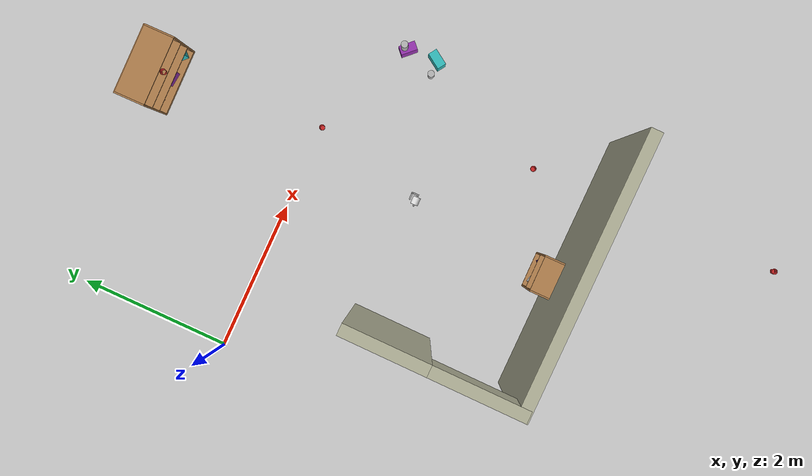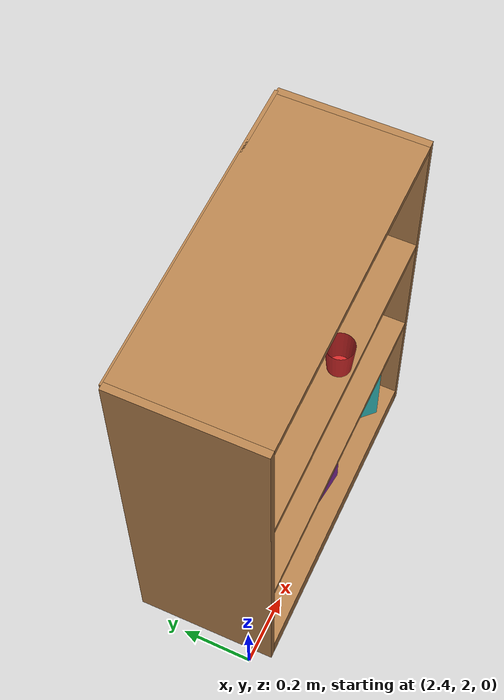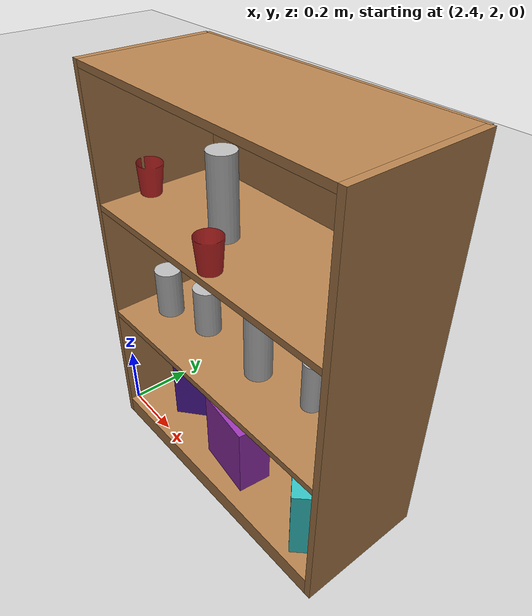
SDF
<sdf version="1.6">
 <world name="default">
  <model name="ground_plane">
   <static>1</static>
   <link name="link">
    <collision name="collision">
     <geometry><plane><normal>0 0 1</normal><size>20 20</size></plane></geometry>
     <surface>
      <contact><collide_bitmask>65535</collide_bitmask></contact>
      <friction><ode><mu>400</mu><mu2>50</mu2></ode></friction>
     </surface>
    </collision>
    <visual name="visual">
     <cast_shadows>0</cast_shadows>
     <geometry><plane><normal>0 0 1</normal><size>20 20</size></plane></geometry>
     <material>
      <script><uri>file://media/materials/scripts/gazebo.material</uri><name>Gazebo/Grey</name></script>
     </material>
    </visual>
   </link>
  </model>
  <model name="bookshelf">
   <static>1</static>
   <link name="link">
    <inertial><mass>1</mass></inertial>
    <collision name="back">
     <pose>0 0.005 0.6 0 -0 0</pose>
     <geometry><box><size>0.9 0.01 1.2</size></box></geometry>
    </collision>
    <visual name="visual1">
     <pose>0 0.005 0.6 0 -0 0</pose>
     <geometry><box><size>0.9 0.01 1.2</size></box></geometry>
     <material>
      <script><uri>file://media/materials/scripts/gazebo.material</uri><name>Gazebo/Wood</name></script>
     </material>
    </visual>
    <collision name="left_side">
     <pose>0.45 -0.195 0.6 0 -0 0</pose>
     <geometry><box><size>0.02 0.4 1.2</size></box></geometry>
    </collision>
    <visual name="visual2">
     <pose>0.45 -0.195 0.6 0 -0 0</pose>
     <geometry><box><size>0.02 0.4 1.2</size></box></geometry>
     <material>
      <script><uri>file://media/materials/scripts/gazebo.material</uri><name>Gazebo/Wood</name></script>
     </material>
    </visual>
    <collision name="right_side">
     <pose>-0.45 -0.195 0.6 0 -0 0</pose>
     <geometry><box><size>0.02 0.4 1.2</size></box></geometry>
    </collision>
    <visual name="visual3">
     <pose>-0.45 -0.195 0.6 0 -0 0</pose>
     <geometry><box><size>0.02 0.4 1.2</size></box></geometry>
     <material>
      <script><uri>file://media/materials/scripts/gazebo.material</uri><name>Gazebo/Wood</name></script>
     </material>
    </visual>
    <collision name="bottom">
     <pose>0 -0.195 0.03 0 -0 0</pose>
     <geometry><box><size>0.88 0.4 0.06</size></box></geometry>
    </collision>
    <visual name="visual4">
     <pose>0 -0.195 0.03 0 -0 0</pose>
     <geometry><box><size>0.88 0.4 0.06</size></box></geometry>
     <material>
      <script><uri>file://media/materials/scripts/gazebo.material</uri><name>Gazebo/Wood</name></script>
     </material>
    </visual>
    <collision name="top">
     <pose>0 -0.195 1.19 0 -0 0</pose>
     <geometry><box><size>0.88 0.4 0.02</size></box></geometry>
    </collision>
    <visual name="visual5">
     <pose>0 -0.195 1.19 0 -0 0</pose>
     <geometry><box><size>0.88 0.4 0.02</size></box></geometry>
     <material>
      <script><uri>file://media/materials/scripts/gazebo.material</uri><name>Gazebo/Wood</name></script>
     </material>
    </visual>
    <collision name="low_shelf">
     <pose>0 -0.195 0.43 0 -0 0</pose>
     <geometry><box><size>0.88 0.4 0.02</size></box></geometry>
    </collision>
    <visual name="visual6">
     <pose>0 -0.195 0.43 0 -0 0</pose>
     <geometry><box><size>0.88 0.4 0.02</size></box></geometry>
     <material>
      <script><uri>file://media/materials/scripts/gazebo.material</uri><name>Gazebo/Wood</name></script>
     </material>
    </visual>
    <collision name="high_shelf">
     <pose>0 -0.195 0.8 0 -0 0</pose>
     <geometry><box><size>0.88 0.4 0.02</size></box></geometry>
    </collision>
    <visual name="visual7">
     <pose>0 -0.195 0.8 0 -0 0</pose>
     <geometry><box><size>0.88 0.4 0.02</size></box></geometry>
     <material>
      <script><uri>file://media/materials/scripts/gazebo.material</uri><name>Gazebo/Wood</name></script>
     </material>
    </visual>
    <velocity_decay><linear>0</linear><angular>0</angular></velocity_decay>
   </link>
   <pose>2.88901 2.34907 0 0 -0 0.011886</pose>
  </model>
  <model name="unit_box_0">
   <pose>2.91022 2.06442 0.177873 0 -0 1.4611</pose>
   <link name="link">
    <inertial>
     <mass>1</mass>
     <inertia>
      <ixx>0.166667</ixx>
      <ixy>0</ixy>
      <ixz>0</ixz>
      <iyy>0.166667</iyy>
      <iyz>0</iyz>
      <izz>0.166667</izz>
     </inertia>
    </inertial>
    <collision name="collision"><geometry><box><size>0.103337 0.19266 0.235754</size></box></geometry></collision>
    <visual name="visual">
     <geometry><box><size>0.103337 0.19266 0.235754</size></box></geometry>
     <material>
      <script><name>Gazebo/Purple</name><uri>file://media/materials/scripts/gazebo.material</uri></script>
     </material>
    </visual>
   </link>
  </model>
  <model name="unit_box_0_clone">
   <pose>3.20796 2.08529 0.177871 0 -0 0.810944</pose>
   <link name="link">
    <inertial>
     <mass>1</mass>
     <inertia>
      <ixx>0.166667</ixx>
      <ixy>0</ixy>
      <ixz>0</ixz>
      <iyy>0.166667</iyy>
      <iyz>0</iyz>
      <izz>0.166667</izz>
     </inertia>
    </inertial>
    <collision name="collision"><geometry><box><size>0.103337 0.19266 0.235754</size></box></geometry></collision>
    <visual name="visual">
     <geometry><box><size>0.103337 0.19266 0.235754</size></box></geometry>
     <material>
      <script><name>Gazebo/Turquoise</name><uri>file://media/materials/scripts/gazebo.material</uri></script>
     </material>
    </visual>
   </link>
  </model>
  <model name="unit_box_0_clone_0">
   <pose>2.64663 2.13879 0.177874 -1e-06 1e-06 -0.868392</pose>
   <link name="link">
    <inertial>
     <mass>1</mass>
     <inertia>
      <ixx>0.166667</ixx>
      <ixy>0</ixy>
      <ixz>0</ixz>
      <iyy>0.166667</iyy>
      <iyz>0</iyz>
      <izz>0.166667</izz>
     </inertia>
    </inertial>
    <collision name="collision"><geometry><box><size>0.103337 0.19266 0.235754</size></box></geometry></collision>
    <visual name="visual">
     <geometry><box><size>0.103337 0.19266 0.235754</size></box></geometry>
     <material>
      <script><name>Gazebo/Indigo</name><uri>file://media/materials/scripts/gazebo.material</uri></script>
     </material>
    </visual>
   </link>
  </model>
  <model name="sprite">
   <static>0</static>
   <link name="link">
    <inertial>
     <mass>0.25</mass>
     <inertia><ixx>0</ixx><ixy>0</ixy><ixz>0</ixz><iyy>0</iyy><iyz>0</iyz><izz>0</izz></inertia>
    </inertial>
    <collision name="collision">
     <pose>0 0 0.075 -3.14159 -0 0</pose>
     <geometry><cylinder><radius>0.04</radius><length>0.15</length></cylinder></geometry>
    </collision>
    <visual name="visual">
     <pose>0 0 0.075 -3.14159 -0 0</pose>
     <geometry><cylinder><radius>0.04</radius><length>0.15</length></cylinder></geometry>
     <material>
      <script>
       <uri>model://sprite/material/scripts</uri>
       <uri>model://sprite/material/textures</uri>
       <name>Custom/sprite</name>
      </script>
     </material>
    </visual>
    <velocity_decay><linear>0</linear><angular>0</angular></velocity_decay>
   </link>
   <pose>2.55298 2.08461 0.440008 -0.000126 -0.000168 -5.5e-05</pose>
  </model>
  <model name="cocacola">
   <static>0</static>
   <link name="link">
    <inertial>
     <mass>0.25</mass>
     <inertia><ixx>0</ixx><ixy>0</ixy><ixz>0</ixz><iyy>0</iyy><iyz>0</iyz><izz>0</izz></inertia>
    </inertial>
    <collision name="collision">
     <pose>0 0 0.075 -3.14159 -0 0</pose>
     <geometry><cylinder><radius>0.04</radius><length>0.15</length></cylinder></geometry>
    </collision>
    <visual name="visual">
     <pose>0 0 0.075 -3.14159 -0 0</pose>
     <geometry><cylinder><radius>0.04</radius><length>0.15</length></cylinder></geometry>
     <material>
      <script>
       <uri>model://cocacola/material/scripts</uri>
       <uri>model://cocacola/material/textures</uri>
       <name>Custom/cocacola</name>
      </script>
     </material>
    </visual>
    <velocity_decay><linear>0</linear><angular>0</angular></velocity_decay>
   </link>
   <pose>2.70315 2.11913 0.44001 -0.000179 0.000163 -7e-05</pose>
  </model>
  <model name="coke_can_slim">
   <static>0</static>
   <link name="link">
    <inertial>
     <mass>0.15</mass>
     <inertia><ixx>2079.98</ixx><ixy>0</ixy><ixz>0</ixz><iyy>2079.98</iyy><iyz>0</iyz><izz>419.21</izz></inertia>
    </inertial>
    <collision name="collision">
     <geometry><cylinder><radius>0.029</radius><length>0.15</length></cylinder></geometry>
    </collision>
    <visual name="visual">
     <geometry><cylinder><radius>0.029</radius><length>0.15</length></cylinder></geometry>
     <material>
      <script>
       <uri>model://coke_can_slim/material/scripts</uri>
       <uri>model://coke_can_slim/material/textures</uri>
       <name>Custom/coke_can_slim</name>
      </script>
     </material>
    </visual>
    <velocity_decay><linear>0</linear><angular>0</angular></velocity_decay>
   </link>
   <pose>3.13415 2.14019 0.514999 -0.000298 3.5e-05 0</pose>
  </model>
  <model name="pringles2">
   <static>0</static>
   <link name="link">
    <inertial>
     <mass>0.25</mass>
     <inertia><ixx>0</ixx><ixy>0</ixy><ixz>0</ixz><iyy>0</iyy><iyz>0</iyz><izz>0</izz></inertia>
    </inertial>
    <collision name="collision">
     <pose>0 0 0.12 -3.14159 -0 0</pose>
     <geometry><cylinder><radius>0.04</radius><length>0.235</length></cylinder></geometry>
    </collision>
    <visual name="visual">
     <pose>0 0 0.12 -3.14159 -0 0</pose>
     <geometry><cylinder><radius>0.04</radius><length>0.235</length></cylinder></geometry>
     <material>
      <script>
       <uri>model://pringles2/material/scripts</uri>
       <uri>model://pringles2/material/textures</uri>
       <name>Custom/pringles2</name>
      </script>
     </material>
    </visual>
    <velocity_decay><linear>0</linear><angular>0</angular></velocity_decay>
   </link>
   <pose>2.949 2.11273 0.437493 8e-06 6.4e-05 0.001154</pose>
  </model>
  <model name="pringles">
   <static>0</static>
   <link name="link">
    <inertial>
     <mass>0.25</mass>
     <inertia><ixx>0</ixx><ixy>0</ixy><ixz>0</ixz><iyy>0</iyy><iyz>0</iyz><izz>0</izz></inertia>
    </inertial>
    <collision name="collision">
     <geometry><cylinder><radius>0.04</radius><length>0.235</length></cylinder></geometry>
    </collision>
    <visual name="visual">
     <geometry><cylinder><radius>0.04</radius><length>0.235</length></cylinder></geometry>
     <material>
      <script>
       <uri>model://pringles/material/scripts</uri>
       <uri>model://pringles/material/textures</uri>
       <name>Custom/pringles</name>
      </script>
     </material>
    </visual>
    <velocity_decay><linear>0</linear><angular>0</angular></velocity_decay>
   </link>
   <pose>2.81279 2.11198 0.927495 -6e-05 9.4e-05 -0.001067</pose>
  </model>
  <model name="cup_glass_test">
   <link name="link_0">
    <inertial>
     <mass>0.0510344</mass>
     <inertia>
      <ixx>5.22719e-05</ixx>
      <ixy>0</ixy>
      <ixz>0</ixz>
      <iyy>5.22719e-05</iyy>
      <iyz>0</iyz>
      <izz>3.65038e-05</izz>
     </inertia>
     <pose>0 0 0.048 0 -0 0</pose>
    </inertial>
    <visual name="visual">
     <geometry><mesh><uri>model://cup_glass_test/meshes/cup_glass.dae</uri><scale>1 1 1</scale></mesh></geometry>
     <material>
      <lighting>1</lighting>
      <script><uri>file://media/materials/scripts/gazebo.material</uri><name>Gazebo/Red</name></script>
     </material>
    </visual>
    <collision name="collision">
     <geometry><mesh><uri>model://cup_glass_test/meshes/cup_glass.dae</uri><scale>1 1 1</scale></mesh></geometry>
     <surface>
      <friction>
       <ode><mu>1</mu><mu2>1</mu2><fdir1>0 0 0</fdir1><slip1>0</slip1><slip2>0</slip2></ode>
       <torsional>
        <coefficient>1</coefficient>
        <patch_radius>0</patch_radius>
        <surface_radius>0</surface_radius>
        <use_patch_radius>1</use_patch_radius>
        <ode><slip>0</slip></ode>
       </torsional>
      </friction>
      <bounce><restitution_coefficient>0</restitution_coefficient><threshold>1e+06</threshold></bounce>
      <contact>
       <collide_without_contact>0</collide_without_contact>
       <collide_without_contact_bitmask>1</collide_without_contact_bitmask>
       <collide_bitmask>1</collide_bitmask>
       <ode>
        <soft_cfm>0</soft_cfm>
        <soft_erp>0.2</soft_erp>
        <kp>1e+13</kp>
        <kd>1</kd>
        <max_vel>0.01</max_vel>
        <min_depth>0</min_depth>
       </ode>
       <bullet>
        <split_impulse>1</split_impulse>
        <split_impulse_penetration_threshold>-0.01</split_impulse_penetration_threshold>
        <soft_cfm>0</soft_cfm>
        <soft_erp>0.2</soft_erp>
        <kp>1e+13</kp>
        <kd>1</kd>
       </bullet>
      </contact>
     </surface>
    </collision>
   </link>
   <static>0</static>
   <pose>2.91796 1.99162 0.809318 -0.014445 -0.014271 0.093986</pose>
  </model>
  <model name="cup_glass_test_0">
   <link name="link_0">
    <inertial>
     <mass>0.0510344</mass>
     <inertia>
      <ixx>5.22719e-05</ixx>
      <ixy>0</ixy>
      <ixz>0</ixz>
      <iyy>5.22719e-05</iyy>
      <iyz>0</iyz>
      <izz>3.65038e-05</izz>
     </inertia>
     <pose>0 0 0.048 0 -0 0</pose>
    </inertial>
    <visual name="visual">
     <geometry><mesh><uri>model://cup_glass_test/meshes/cup_glass.dae</uri><scale>1 1 1</scale></mesh></geometry>
     <material>
      <lighting>1</lighting>
      <script><uri>file://media/materials/scripts/gazebo.material</uri><name>Gazebo/Red</name></script>
     </material>
    </visual>
    <collision name="collision">
     <geometry><mesh><uri>model://cup_glass_test/meshes/cup_glass.dae</uri><scale>1 1 1</scale></mesh></geometry>
     <surface>
      <friction>
       <ode><mu>1</mu><mu2>1</mu2><fdir1>0 0 0</fdir1><slip1>0</slip1><slip2>0</slip2></ode>
       <torsional>
        <coefficient>1</coefficient>
        <patch_radius>0</patch_radius>
        <surface_radius>0</surface_radius>
        <use_patch_radius>1</use_patch_radius>
        <ode><slip>0</slip></ode>
       </torsional>
      </friction>
      <bounce><restitution_coefficient>0</restitution_coefficient><threshold>1e+06</threshold></bounce>
      <contact>
       <collide_without_contact>0</collide_without_contact>
       <collide_without_contact_bitmask>1</collide_without_contact_bitmask>
       <collide_bitmask>1</collide_bitmask>
       <ode>
        <soft_cfm>0</soft_cfm>
        <soft_erp>0.2</soft_erp>
        <kp>1e+13</kp>
        <kd>1</kd>
        <max_vel>0.01</max_vel>
        <min_depth>0</min_depth>
       </ode>
       <bullet>
        <split_impulse>1</split_impulse>
        <split_impulse_penetration_threshold>-0.01</split_impulse_penetration_threshold>
        <soft_cfm>0</soft_cfm>
        <soft_erp>0.2</soft_erp>
        <kp>1e+13</kp>
        <kd>1</kd>
       </bullet>
      </contact>
     </surface>
    </collision>
   </link>
   <static>0</static>
   <pose>2.48303 2.097 0.81171 -0.008596 0.065626 0.085069</pose>
  </model>
  <model name="cup_glass_test_1">
   <link name="link_0">
    <inertial>
     <mass>0.0510344</mass>
     <inertia>
      <ixx>5.22719e-05</ixx>
      <ixy>0</ixy>
      <ixz>0</ixz>
      <iyy>5.22719e-05</iyy>
      <iyz>0</iyz>
      <izz>3.65038e-05</izz>
     </inertia>
     <pose>0 0 0.048 0 -0 0</pose>
    </inertial>
    <visual name="visual">
     <geometry><mesh><uri>model://cup_glass_test/meshes/cup_glass.dae</uri><scale>1 1 1</scale></mesh></geometry>
     <material>
      <lighting>1</lighting>
      <script><uri>file://media/materials/scripts/gazebo.material</uri><name>Gazebo/Red</name></script>
     </material>
    </visual>
    <collision name="collision">
     <geometry><mesh><uri>model://cup_glass_test/meshes/cup_glass.dae</uri><scale>1 1 1</scale></mesh></geometry>
     <surface>
      <friction>
       <ode><mu>1</mu><mu2>1</mu2><fdir1>0 0 0</fdir1><slip1>0</slip1><slip2>0</slip2></ode>
       <torsional>
        <coefficient>1</coefficient>
        <patch_radius>0</patch_radius>
        <surface_radius>0</surface_radius>
        <use_patch_radius>1</use_patch_radius>
        <ode><slip>0</slip></ode>
       </torsional>
      </friction>
      <bounce><restitution_coefficient>0</restitution_coefficient><threshold>1e+06</threshold></bounce>
      <contact>
       <collide_without_contact>0</collide_without_contact>
       <collide_without_contact_bitmask>1</collide_without_contact_bitmask>
       <collide_bitmask>1</collide_bitmask>
       <ode>
        <soft_cfm>0</soft_cfm>
        <soft_erp>0.2</soft_erp>
        <kp>1e+13</kp>
        <kd>1</kd>
        <max_vel>0.01</max_vel>
        <min_depth>0</min_depth>
       </ode>
       <bullet>
        <split_impulse>1</split_impulse>
        <split_impulse_penetration_threshold>-0.01</split_impulse_penetration_threshold>
        <soft_cfm>0</soft_cfm>
        <soft_erp>0.2</soft_erp>
        <kp>1e+13</kp>
        <kd>1</kd>
       </bullet>
      </contact>
     </surface>
    </collision>
   </link>
   <static>0</static>
   <pose>3.14225 0.005421 -0.000682 -0.014436 -0.014242 1.10712</pose>
  </model>
  <model name="unit_box_0_clone_1">
   <pose>4.29697 -0.725867 1.88099 1e-06 1e-06 0.766581</pose>
   <link name="link">
    <inertial>
     <mass>1</mass>
     <inertia>
      <ixx>0.166667</ixx>
      <ixy>0</ixy>
      <ixz>0</ixz>
      <iyy>0.166667</iyy>
      <iyz>0</iyz>
      <izz>0.166667</izz>
     </inertia>
    </inertial>
    <collision name="collision"><geometry><box><size>0.103337 0.19266 0.235754</size></box></geometry></collision>
    <visual name="visual">
     <geometry><box><size>0.103337 0.19266 0.235754</size></box></geometry>
     <material>
      <script><name>Gazebo/Purple</name><uri>file://media/materials/scripts/gazebo.material</uri></script>
     </material>
    </visual>
   </link>
  </model>
  <model name="unit_box_0_clone_clone">
   <pose>4.26957 -1.09406 2.24483 -0 9e-06 -0.576163</pose>
   <link name="link">
    <inertial>
     <mass>1</mass>
     <inertia>
      <ixx>0.166667</ixx>
      <ixy>0</ixy>
      <ixz>0</ixz>
      <iyy>0.166667</iyy>
      <iyz>0</iyz>
      <izz>0.166667</izz>
     </inertia>
    </inertial>
    <collision name="collision"><geometry><box><size>0.103337 0.19266 0.235754</size></box></geometry></collision>
    <visual name="visual">
     <geometry><box><size>0.103337 0.19266 0.235754</size></box></geometry>
     <material>
      <script><name>Gazebo/Turquoise</name><uri>file://media/materials/scripts/gazebo.material</uri></script>
     </material>
    </visual>
   </link>
  </model>
  <model name="cocacola_clone">
   <static>0</static>
   <link name="link">
    <inertial>
     <mass>0.25</mass>
     <inertia><ixx>0</ixx><ixy>0</ixy><ixz>0</ixz><iyy>0</iyy><iyz>0</iyz><izz>0</izz></inertia>
    </inertial>
    <collision name="collision">
     <pose>0 0 0.075 -3.14159 -0 0</pose>
     <geometry><cylinder><radius>0.04</radius><length>0.15</length></cylinder></geometry>
    </collision>
    <visual name="visual">
     <pose>0 0 0.075 -3.14159 -0 0</pose>
     <geometry><cylinder><radius>0.04</radius><length>0.15</length></cylinder></geometry>
     <material>
      <script>
       <uri>model://cocacola/material/scripts</uri>
       <uri>model://cocacola/material/textures</uri>
       <name>Custom/cocacola</name>
      </script>
     </material>
    </visual>
    <velocity_decay><linear>0</linear><angular>0</angular></velocity_decay>
   </link>
   <pose>4.15023 -1.08171 1.76313 0.000147 -3.7e-05 5.2e-05</pose>
  </model>
  <model name="pringles_clone">
   <static>0</static>
   <link name="link">
    <inertial>
     <mass>0.25</mass>
     <inertia><ixx>0</ixx><ixy>0</ixy><ixz>0</ixz><iyy>0</iyy><iyz>0</iyz><izz>0</izz></inertia>
    </inertial>
    <collision name="collision">
     <geometry><cylinder><radius>0.04</radius><length>0.235</length></cylinder></geometry>
    </collision>
    <visual name="visual">
     <geometry><cylinder><radius>0.04</radius><length>0.235</length></cylinder></geometry>
     <material>
      <script>
       <uri>model://pringles/material/scripts</uri>
       <uri>model://pringles/material/textures</uri>
       <name>Custom/pringles</name>
      </script>
     </material>
    </visual>
    <velocity_decay><linear>0</linear><angular>0</angular></velocity_decay>
   </link>
   <pose>4.26684 -0.701088 2.24446 -7e-05 0.000201 -0.002037</pose>
  </model>
  <model name="bedroom_internal_walls">
   <pose>2.80429 -2.66465 0 0 -0 3.1351</pose>
   <link name="Wall_0">
    <pose>1.675 -0 0 0 -0 1.5708</pose>
    <visual name="Wall_0_Visual_0">
     <pose>-0.757225 0 1.25 0 -0 0</pose>
     <geometry><box><size>1.08555 0.15 2.5</size></box></geometry>
     <material>
      <script><uri>file://media/materials/scripts/gazebo.material</uri><name>Gazebo/Residential</name></script>
      <ambient>1 1 1 1</ambient>
     </material>
     <meta><layer>0</layer></meta>
    </visual>
    <collision name="Wall_0_Collision_0">
     <geometry><box><size>1.08555 0.15 2.5</size></box></geometry>
     <pose>-0.757225 0 1.25 0 -0 0</pose>
    </collision>
    <visual name="Wall_0_Visual_2">
     <pose>0.38555 0 2.25 0 -0 0</pose>
     <geometry><box><size>1.2 0.15 0.5</size></box></geometry>
     <material>
      <script><uri>file://media/materials/scripts/gazebo.material</uri><name>Gazebo/Residential</name></script>
      <ambient>1 1 1 1</ambient>
     </material>
     <meta><layer>0</layer></meta>
    </visual>
    <collision name="Wall_0_Collision_2">
     <geometry><box><size>1.2 0.15 0.5</size></box></geometry>
     <pose>0.38555 0 2.25 0 -0 0</pose>
    </collision>
   </link>
   <link name="Wall_3">
    <collision name="Wall_3_Collision">
     <geometry><box><size>3.5 0.15 2.5</size></box></geometry>
     <pose>0 0.25 1.25 0 -0 0</pose>
    </collision>
    <visual name="Wall_3_Visual">
     <pose>0 0.25 1.25 0 -0 0</pose>
     <geometry><box><size>3.5 0.15 2.5</size></box></geometry>
     <material>
      <script><uri>file://media/materials/scripts/gazebo.material</uri><name>Gazebo/Residential</name></script>
      <ambient>1 1 1 1</ambient>
     </material>
     <meta><layer>0</layer></meta>
    </visual>
    <pose>-0 1.175 0 0 -0 3.14159</pose>
   </link>
   <static>1</static>
  </model>
  <model name="toilet_paper">
   <link name="link_0">
    <inertial>
     <mass>0.1</mass>
     <inertia>
      <ixx>0.00014583</ixx>
      <ixy>0</ixy>
      <ixz>0</ixz>
      <iyy>0.00014583</iyy>
      <iyz>0</iyz>
      <izz>0.000125</izz>
     </inertia>
    </inertial>
    <pose>0.028885 -0.028975 0 1.56769 -0 0</pose>
    <visual name="visual">
     <geometry><cylinder><radius>0.05</radius><length>0.1</length></cylinder></geometry>
     <material>
      <lighting>1</lighting>
      <script><uri>file://media/materials/scripts/gazebo.material</uri><name>Gazebo/White</name></script>
      <shader type="pixel"><normal_map>__default__</normal_map></shader>
     </material>
    </visual>
    <collision name="collision">
     <geometry><cylinder><radius>0.05</radius><length>0.1</length></cylinder></geometry>
     <surface>
      <friction>
       <ode><mu>1</mu><mu2>1</mu2><fdir1>0 0 0</fdir1><slip1>0</slip1><slip2>0</slip2></ode>
       <torsional>
        <coefficient>1</coefficient>
        <patch_radius>0</patch_radius>
        <surface_radius>0</surface_radius>
        <use_patch_radius>1</use_patch_radius>
        <ode><slip>0</slip></ode>
       </torsional>
      </friction>
      <bounce><restitution_coefficient>0</restitution_coefficient><threshold>1e+06</threshold></bounce>
      <contact>
       <collide_without_contact>0</collide_without_contact>
       <collide_without_contact_bitmask>1</collide_without_contact_bitmask>
       <collide_bitmask>1</collide_bitmask>
       <ode>
        <soft_cfm>0</soft_cfm>
        <soft_erp>0.2</soft_erp>
        <kp>1e+13</kp>
        <kd>1</kd>
        <max_vel>0.01</max_vel>
        <min_depth>0</min_depth>
       </ode>
       <bullet>
        <split_impulse>1</split_impulse>
        <split_impulse_penetration_threshold>-0.01</split_impulse_penetration_threshold>
        <soft_cfm>0</soft_cfm>
        <soft_erp>0.2</soft_erp>
        <kp>1e+13</kp>
        <kd>1</kd>
       </bullet>
      </contact>
     </surface>
    </collision>
   </link>
   <link name="link_1">
    <inertial>
     <mass>0.1</mass>
     <inertia><ixx>0.00019</ixx><ixy>0</ixy><ixz>0</ixz><iyy>0.00019</iyy><iyz>0</iyz><izz>5e-06</izz></inertia>
    </inertial>
    <pose>0.029198 -0.028543 0 1.56769 -0 0</pose>
    <visual name="visual">
     <geometry><cylinder><radius>0.01</radius><length>0.15</length></cylinder></geometry>
     <material>
      <lighting>1</lighting>
      <script><uri>file://media/materials/scripts/gazebo.material</uri><name>Gazebo/Grey</name></script>
      <shader type="pixel"><normal_map>__default__</normal_map></shader>
     </material>
    </visual>
    <collision name="collision">
     <geometry><cylinder><radius>0.01</radius><length>0.15</length></cylinder></geometry>
     <surface>
      <friction>
       <ode><mu>1</mu><mu2>1</mu2><fdir1>0 0 0</fdir1><slip1>0</slip1><slip2>0</slip2></ode>
       <torsional>
        <coefficient>1</coefficient>
        <patch_radius>0</patch_radius>
        <surface_radius>0</surface_radius>
        <use_patch_radius>1</use_patch_radius>
        <ode><slip>0</slip></ode>
       </torsional>
      </friction>
      <bounce><restitution_coefficient>0</restitution_coefficient><threshold>1e+06</threshold></bounce>
      <contact>
       <collide_without_contact>0</collide_without_contact>
       <collide_without_contact_bitmask>1</collide_without_contact_bitmask>
       <collide_bitmask>1</collide_bitmask>
       <ode>
        <soft_cfm>0</soft_cfm>
        <soft_erp>0.2</soft_erp>
        <kp>1e+13</kp>
        <kd>1</kd>
        <max_vel>0.01</max_vel>
        <min_depth>0</min_depth>
       </ode>
       <bullet>
        <split_impulse>1</split_impulse>
        <split_impulse_penetration_threshold>-0.01</split_impulse_penetration_threshold>
        <soft_cfm>0</soft_cfm>
        <soft_erp>0.2</soft_erp>
        <kp>1e+13</kp>
        <kd>1</kd>
       </bullet>
      </contact>
     </surface>
    </collision>
   </link>
   <link name="link_2">
    <inertial>
     <mass>0.1</mass>
     <inertia>
      <ixx>6.67e-06</ixx>
      <ixy>0</ixy>
      <ixz>0</ixz>
      <iyy>8.667e-05</iyy>
      <iyz>0</iyz>
      <izz>8.667e-05</izz>
     </inertia>
    </inertial>
    <pose>-0.009032 0.049947 0 0 -0 0</pose>
    <visual name="visual">
     <geometry><box><size>0.1 0.02 0.02</size></box></geometry>
     <material>
      <lighting>1</lighting>
      <script><uri>file://media/materials/scripts/gazebo.material</uri><name>Gazebo/Grey</name></script>
      <shader type="pixel"><normal_map>__default__</normal_map></shader>
     </material>
    </visual>
    <collision name="collision">
     <geometry><box><size>0.1 0.02 0.02</size></box></geometry>
     <surface>
      <friction>
       <ode><mu>1</mu><mu2>1</mu2><fdir1>0 0 0</fdir1><slip1>0</slip1><slip2>0</slip2></ode>
       <torsional>
        <coefficient>1</coefficient>
        <patch_radius>0</patch_radius>
        <surface_radius>0</surface_radius>
        <use_patch_radius>1</use_patch_radius>
        <ode><slip>0</slip></ode>
       </torsional>
      </friction>
      <bounce><restitution_coefficient>0</restitution_coefficient><threshold>1e+06</threshold></bounce>
      <contact>
       <collide_without_contact>0</collide_without_contact>
       <collide_without_contact_bitmask>1</collide_without_contact_bitmask>
       <collide_bitmask>1</collide_bitmask>
       <ode>
        <soft_cfm>0</soft_cfm>
        <soft_erp>0.2</soft_erp>
        <kp>1e+13</kp>
        <kd>1</kd>
        <max_vel>0.01</max_vel>
        <min_depth>0</min_depth>
       </ode>
       <bullet>
        <split_impulse>1</split_impulse>
        <split_impulse_penetration_threshold>-0.01</split_impulse_penetration_threshold>
        <soft_cfm>0</soft_cfm>
        <soft_erp>0.2</soft_erp>
        <kp>1e+13</kp>
        <kd>1</kd>
       </bullet>
      </contact>
     </surface>
    </collision>
   </link>
   <link name="link_3">
    <inertial>
     <mass>0.1</mass>
     <inertia>
      <ixx>6.67e-06</ixx>
      <ixy>0</ixy>
      <ixz>0</ixz>
      <iyy>8.667e-05</iyy>
      <iyz>0</iyz>
      <izz>8.667e-05</izz>
     </inertia>
    </inertial>
    <pose>-0.04905 0.007573 0 0 -0 1.57759</pose>
    <visual name="visual">
     <geometry><box><size>0.1 0.02 0.02</size></box></geometry>
     <material>
      <lighting>1</lighting>
      <script><uri>file://media/materials/scripts/gazebo.material</uri><name>Gazebo/Grey</name></script>
      <shader type="pixel"><normal_map>__default__</normal_map></shader>
     </material>
    </visual>
    <collision name="collision">
     <geometry><box><size>0.1 0.02 0.02</size></box></geometry>
     <surface>
      <friction>
       <ode><mu>1</mu><mu2>1</mu2><fdir1>0 0 0</fdir1><slip1>0</slip1><slip2>0</slip2></ode>
       <torsional>
        <coefficient>1</coefficient>
        <patch_radius>0</patch_radius>
        <surface_radius>0</surface_radius>
        <use_patch_radius>1</use_patch_radius>
        <ode><slip>0</slip></ode>
       </torsional>
      </friction>
      <bounce><restitution_coefficient>0</restitution_coefficient><threshold>1e+06</threshold></bounce>
      <contact>
       <collide_without_contact>0</collide_without_contact>
       <collide_without_contact_bitmask>1</collide_without_contact_bitmask>
       <collide_bitmask>1</collide_bitmask>
       <ode>
        <soft_cfm>0</soft_cfm>
        <soft_erp>0.2</soft_erp>
        <kp>1e+13</kp>
        <kd>1</kd>
        <max_vel>0.01</max_vel>
        <min_depth>0</min_depth>
       </ode>
       <bullet>
        <split_impulse>1</split_impulse>
        <split_impulse_penetration_threshold>-0.01</split_impulse_penetration_threshold>
        <soft_cfm>0</soft_cfm>
        <soft_erp>0.2</soft_erp>
        <kp>1e+13</kp>
        <kd>1</kd>
       </bullet>
      </contact>
     </surface>
    </collision>
   </link>
   <static>1</static>
   <pose>2.79867 -1.48681 0.575628 0 0 -1.55406</pose>
  </model>
  <model name="cup_glass_test_4">
   <link name="link_0">
    <inertial>
     <mass>0.0510344</mass>
     <inertia>
      <ixx>5.22719e-05</ixx>
      <ixy>0</ixy>
      <ixz>0</ixz>
      <iyy>5.22719e-05</iyy>
      <iyz>0</iyz>
      <izz>3.65038e-05</izz>
     </inertia>
     <pose>0 0 0.048 0 -0 0</pose>
    </inertial>
    <visual name="visual">
     <geometry><mesh><uri>model://cup_glass_test/meshes/cup_glass.dae</uri><scale>1 1 1</scale></mesh></geometry>
     <material>
      <lighting>1</lighting>
      <script><uri>file://media/materials/scripts/gazebo.material</uri><name>Gazebo/Red</name></script>
     </material>
    </visual>
    <collision name="collision">
     <geometry><mesh><uri>model://cup_glass_test/meshes/cup_glass.dae</uri><scale>1 1 1</scale></mesh></geometry>
     <surface>
      <friction>
       <ode><mu>1</mu><mu2>1</mu2><fdir1>0 0 0</fdir1><slip1>0</slip1><slip2>0</slip2></ode>
       <torsional>
        <coefficient>1</coefficient>
        <patch_radius>0</patch_radius>
        <surface_radius>0</surface_radius>
        <use_patch_radius>1</use_patch_radius>
        <ode><slip>0</slip></ode>
       </torsional>
      </friction>
      <bounce><restitution_coefficient>0</restitution_coefficient><threshold>1e+06</threshold></bounce>
      <contact>
       <collide_without_contact>0</collide_without_contact>
       <collide_without_contact_bitmask>1</collide_without_contact_bitmask>
       <collide_bitmask>1</collide_bitmask>
       <ode>
        <soft_cfm>0</soft_cfm>
        <soft_erp>0.2</soft_erp>
        <kp>1e+13</kp>
        <kd>1</kd>
        <max_vel>0.01</max_vel>
        <min_depth>0</min_depth>
       </ode>
       <bullet>
        <split_impulse>1</split_impulse>
        <split_impulse_penetration_threshold>-0.01</split_impulse_penetration_threshold>
        <soft_cfm>0</soft_cfm>
        <soft_erp>0.2</soft_erp>
        <kp>1e+13</kp>
        <kd>1</kd>
       </bullet>
      </contact>
     </surface>
    </collision>
   </link>
   <static>0</static>
   <pose>3.80422 -2.74585 -0.000682 -0.014426 -0.01429 1.69155</pose>
  </model>
  <model name="cup_glass_test_5">
   <link name="link_0">
    <inertial>
     <mass>0.0510344</mass>
     <inertia>
      <ixx>5.22719e-05</ixx>
      <ixy>0</ixy>
      <ixz>0</ixz>
      <iyy>5.22719e-05</iyy>
      <iyz>0</iyz>
      <izz>3.65038e-05</izz>
     </inertia>
     <pose>0 0 0.048 0 -0 0</pose>
    </inertial>
    <visual name="visual">
     <geometry><mesh><uri>model://cup_glass_test/meshes/cup_glass.dae</uri><scale>1 1 1</scale></mesh></geometry>
     <material>
      <lighting>1</lighting>
      <script><uri>file://media/materials/scripts/gazebo.material</uri><name>Gazebo/Red</name></script>
     </material>
    </visual>
    <collision name="collision">
     <geometry><mesh><uri>model://cup_glass_test/meshes/cup_glass.dae</uri><scale>1 1 1</scale></mesh></geometry>
     <surface>
      <friction>
       <ode><mu>1</mu><mu2>1</mu2><fdir1>0 0 0</fdir1><slip1>0</slip1><slip2>0</slip2></ode>
       <torsional>
        <coefficient>1</coefficient>
        <patch_radius>0</patch_radius>
        <surface_radius>0</surface_radius>
        <use_patch_radius>1</use_patch_radius>
        <ode><slip>0</slip></ode>
       </torsional>
      </friction>
      <bounce><restitution_coefficient>0</restitution_coefficient><threshold>1e+06</threshold></bounce>
      <contact>
       <collide_without_contact>0</collide_without_contact>
       <collide_without_contact_bitmask>1</collide_without_contact_bitmask>
       <collide_bitmask>1</collide_bitmask>
       <ode>
        <soft_cfm>0</soft_cfm>
        <soft_erp>0.2</soft_erp>
        <kp>1e+13</kp>
        <kd>1</kd>
        <max_vel>0.01</max_vel>
        <min_depth>0</min_depth>
       </ode>
       <bullet>
        <split_impulse>1</split_impulse>
        <split_impulse_penetration_threshold>-0.01</split_impulse_penetration_threshold>
        <soft_cfm>0</soft_cfm>
        <soft_erp>0.2</soft_erp>
        <kp>1e+13</kp>
        <kd>1</kd>
       </bullet>
      </contact>
     </surface>
    </collision>
   </link>
   <static>0</static>
   <pose>3.89573 -6.19212 -0.000682 -0.014453 -0.014257 -1.33979</pose>
  </model>
  <model name="cabinet_clone">
   <static>1</static>
   <link name="cabinet_bottom_plate">
    <inertial>
     <pose>0 0 -1 0 -0 0</pose>
     <inertia><ixx>2.05</ixx><ixy>0</ixy><ixz>0</ixz><iyy>2.05</iyy><iyz>0</iyz><izz>2.05</izz></inertia>
     <mass>25</mass>
    </inertial>
    <collision name="cabinet_bottom_plate_geom">
     <pose>0 0 0.01 0 -0 0</pose>
     <geometry><box><size>0.45 0.45 0.02</size></box></geometry>
    </collision>
    <visual name="cabinet_bottom_plate_geom_visual">
     <pose>0 0 0.01 0 -0 0</pose>
     <geometry><box><size>0.45 0.45 0.02</size></box></geometry>
     <material>
      <script><uri>file://media/materials/scripts/gazebo.material</uri><name>Gazebo/Wood</name></script>
     </material>
    </visual>
    <collision name="cabinet_bottom_plate_geom_cabinet_back_plate">
     <pose>0.235 0 0.51 0 -0 0</pose>
     <geometry><box><size>0.02 0.45 1.02</size></box></geometry>
    </collision>
    <visual name="cabinet_bottom_plate_geom_cabinet_back_plate_visual">
     <pose>0.235 0 0.51 0 -0 0</pose>
     <geometry><box><size>0.02 0.45 1.02</size></box></geometry>
     <material>
      <script><uri>file://media/materials/scripts/gazebo.material</uri><name>Gazebo/Wood</name></script>
     </material>
    </visual>
    <collision name="cabinet_bottom_plate_geom_cabinet_left_plate">
     <pose>0 0.235 0.51 0 -0 0</pose>
     <geometry><box><size>0.45 0.02 1.02</size></box></geometry>
    </collision>
    <visual name="cabinet_bottom_plate_geom_cabinet_left_plate_visual">
     <pose>0 0.235 0.51 0 -0 0</pose>
     <geometry><box><size>0.45 0.02 1.02</size></box></geometry>
     <material>
      <script><uri>file://media/materials/scripts/gazebo.material</uri><name>Gazebo/Wood</name></script>
     </material>
    </visual>
    <collision name="cabinet_bottom_plate_geom_cabinet_middle_plate">
     <pose>0 0 0.51 0 -0 0</pose>
     <geometry><box><size>0.45 0.45 0.02</size></box></geometry>
    </collision>
    <visual name="cabinet_bottom_plate_geom_cabinet_middle_plate_visual">
     <pose>0 0 0.51 0 -0 0</pose>
     <geometry><box><size>0.45 0.45 0.02</size></box></geometry>
     <material>
      <script><uri>file://media/materials/scripts/gazebo.material</uri><name>Gazebo/Wood</name></script>
     </material>
    </visual>
    <collision name="cabinet_bottom_plate_geom_cabinet_right_plate">
     <pose>0 -0.235 0.51 0 -0 0</pose>
     <geometry><box><size>0.45 0.02 1.02</size></box></geometry>
    </collision>
    <visual name="cabinet_bottom_plate_geom_cabinet_right_plate_visual">
     <pose>0 -0.235 0.51 0 -0 0</pose>
     <geometry><box><size>0.45 0.02 1.02</size></box></geometry>
     <material>
      <script><uri>file://media/materials/scripts/gazebo.material</uri><name>Gazebo/Wood</name></script>
     </material>
    </visual>
    <collision name="cabinet_bottom_plate_geom_cabinet_top_plate">
     <pose>0 0 1.01 0 -0 0</pose>
     <geometry><box><size>0.45 0.45 0.02</size></box></geometry>
    </collision>
    <visual name="cabinet_bottom_plate_geom_cabinet_top_plate_visual">
     <pose>0 0 1.01 0 -0 0</pose>
     <geometry><box><size>0.45 0.45 0.02</size></box></geometry>
     <material>
      <script><uri>file://media/materials/scripts/gazebo.material</uri><name>Gazebo/Wood</name></script>
     </material>
    </visual>
    <velocity_decay><linear>0</linear><angular>0</angular></velocity_decay>
   </link>
   <pose>2.58652 -3.47558 0 0 0 -1.56565</pose>
  </model>
  <model name="unit_box_1_clone">
   <pose>2.48049 -3.38467 0.166864 4e-06 1e-06 -0.308072</pose>
   <link name="link">
    <inertial>
     <mass>1</mass>
     <inertia>
      <ixx>0.166667</ixx>
      <ixy>0</ixy>
      <ixz>0</ixz>
      <iyy>0.166667</iyy>
      <iyz>0</iyz>
      <izz>0.166667</izz>
     </inertia>
    </inertial>
    <collision name="collision"><geometry><box><size>0.157314 0.16474 0.293728</size></box></geometry></collision>
    <visual name="visual">
     <geometry><box><size>0.157314 0.16474 0.293728</size></box></geometry>
     <material>
      <script><name>Gazebo/White</name><uri>file://media/materials/scripts/gazebo.material</uri></script>
     </material>
    </visual>
   </link>
  </model>
  <model name="unit_box_0_clone_0_clone">
   <pose>2.68517 -3.38848 0.13787 1e-06 -1e-06 -0.868393</pose>
   <link name="link">
    <inertial>
     <mass>1</mass>
     <inertia>
      <ixx>0.166667</ixx>
      <ixy>0</ixy>
      <ixz>0</ixz>
      <iyy>0.166667</iyy>
      <iyz>0</iyz>
      <izz>0.166667</izz>
     </inertia>
    </inertial>
    <collision name="collision"><geometry><box><size>0.103337 0.19266 0.235754</size></box></geometry></collision>
    <visual name="visual">
     <geometry><box><size>0.103337 0.19266 0.235754</size></box></geometry>
     <material>
      <script><name>Gazebo/Indigo</name><uri>file://media/materials/scripts/gazebo.material</uri></script>
     </material>
    </visual>
   </link>
  </model>
  <model name="unit_box_clone">
   <pose>2.56479 -3.40404 0.554916 0 3e-06 -0.280006</pose>
   <link name="link">
    <inertial>
     <mass>1</mass>
     <inertia>
      <ixx>0.166667</ixx>
      <ixy>0</ixy>
      <ixz>0</ixz>
      <iyy>0.166667</iyy>
      <iyz>0</iyz>
      <izz>0.166667</izz>
     </inertia>
    </inertial>
    <collision name="collision">
     <geometry><box><size>0.230096 0.131932 0.069832</size></box></geometry>
    </collision>
    <visual name="visual">
     <geometry><box><size>0.230096 0.131932 0.069832</size></box></geometry>
     <material>
      <script><name>Gazebo/Orange</name><uri>file://media/materials/scripts/gazebo.material</uri></script>
     </material>
    </visual>
   </link>
  </model>
 </world>
</sdf>
